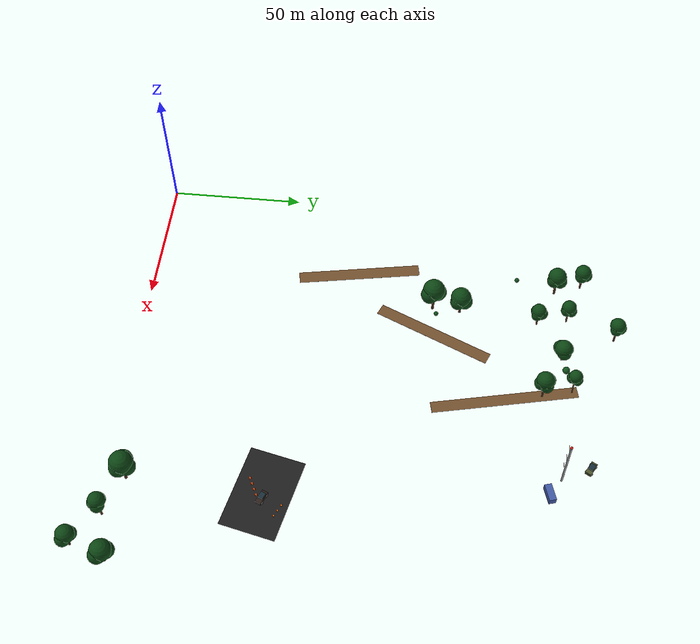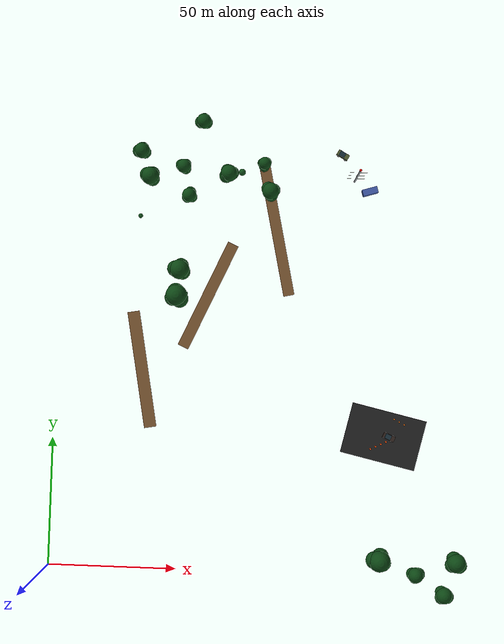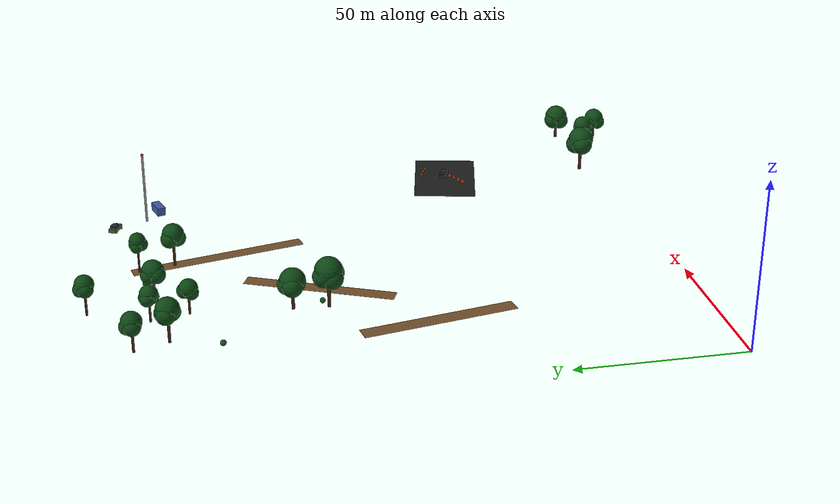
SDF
<sdf version="1.9">
 <world name="forest_monitoring">
  <model name="trail_curve_2">
   <static>true</static>
   <pose>34 78 0.015 0 0 0.18</pose>
   <link name="link">
    <visual name="visual">
     <geometry><box><size>4.8 46 0.03</size></box></geometry>
     <material>
      <ambient>0.36 0.25 0.14 1</ambient>
      <diffuse>0.46 0.32 0.18 1</diffuse>
      <specular>0.1 0.1 0.1 1</specular>
      <pbr><metal><roughness>1.0</roughness><metalness>0.0</metalness></metal></pbr>
     </material>
    </visual>
   </link>
  </model>
  <model name="trail_clearing_link">
   <static>true</static>
   <pose>59 108 0.018 0 0 -0.42</pose>
   <link name="link">
    <visual name="visual">
     <geometry><box><size>4.5 45 0.03</size></box></geometry>
     <material>
      <ambient>0.36 0.25 0.14 1</ambient>
      <diffuse>0.46 0.32 0.18 1</diffuse>
      <specular>0.1 0.1 0.1 1</specular>
      <pbr><metal><roughness>1.0</roughness><metalness>0.0</metalness></metal></pbr>
     </material>
    </visual>
   </link>
  </model>
  <model name="trail_target_link">
   <static>true</static>
   <pose>85 135 0.02 0 0 0.22</pose>
   <link name="link">
    <visual name="visual">
     <geometry><box><size>4.3 53 0.03</size></box></geometry>
     <material>
      <ambient>0.36 0.25 0.14 1</ambient>
      <diffuse>0.46 0.32 0.18 1</diffuse>
      <specular>0.1 0.1 0.1 1</specular>
      <pbr><metal><roughness>1.0</roughness><metalness>0.0</metalness></metal></pbr>
     </material>
    </visual>
   </link>
  </model>
  <model name="monitoring_radio_tower">
   <static>true</static>
   <pose>115 155 0.0 0 0 0</pose>
   <link name="link">
    <collision name="mast_collision">
     <geometry><cylinder><radius>0.35</radius><length>22</length></cylinder></geometry>
    </collision>
    <visual name="mast">
     <pose>0 0 11 0 0 0</pose>
     <geometry><cylinder><radius>0.35</radius><length>22</length></cylinder></geometry>
     <material>
      <ambient>0.45 0.48 0.50 1</ambient>
      <diffuse>0.58 0.60 0.62 1</diffuse>
      <specular>0.1 0.1 0.1 1</specular>
      <pbr><metal><roughness>0.35</roughness><metalness>0.0</metalness></metal></pbr>
     </material>
    </visual>
    <visual name="antenna_bar_0">
     <pose>0 0 6 0 1.5708 0</pose>
     <geometry><cylinder><radius>0.06</radius><length>7</length></cylinder></geometry>
     <material>
      <ambient>0.82 0.82 0.78 1</ambient>
      <diffuse>0.92 0.92 0.86 1</diffuse>
      <specular>0.1 0.1 0.1 1</specular>
      <pbr><metal><roughness>0.4</roughness><metalness>0.0</metalness></metal></pbr>
     </material>
    </visual>
    <visual name="antenna_bar_1">
     <pose>0 0 12 0 1.5708 0</pose>
     <geometry><cylinder><radius>0.06</radius><length>7</length></cylinder></geometry>
     <material>
      <ambient>0.82 0.82 0.78 1</ambient>
      <diffuse>0.92 0.92 0.86 1</diffuse>
      <specular>0.1 0.1 0.1 1</specular>
      <pbr><metal><roughness>0.4</roughness><metalness>0.0</metalness></metal></pbr>
     </material>
    </visual>
    <visual name="antenna_bar_2">
     <pose>0 0 18 0 1.5708 0</pose>
     <geometry><cylinder><radius>0.06</radius><length>7</length></cylinder></geometry>
     <material>
      <ambient>0.82 0.82 0.78 1</ambient>
      <diffuse>0.92 0.92 0.86 1</diffuse>
      <specular>0.1 0.1 0.1 1</specular>
      <pbr><metal><roughness>0.4</roughness><metalness>0.0</metalness></metal></pbr>
     </material>
    </visual>
    <visual name="beacon">
     <pose>0 0 22.6 0 0 0</pose>
     <geometry><sphere><radius>0.45</radius></sphere></geometry>
     <material>
      <ambient>0.9 0.06 0.04 1</ambient>
      <diffuse>1.0 0.08 0.05 1</diffuse>
      <specular>0.1 0.1 0.1 1</specular>
      <pbr><metal><roughness>0.2</roughness><metalness>0.0</metalness></metal></pbr>
     </material>
    </visual>
   </link>
  </model>
  <model name="equipment_container">
   <static>true</static>
   <pose>121 151 1.3 0 0 0.3</pose>
   <link name="link">
    <collision name="collision"><geometry><box><size>6 2.5 2.6</size></box></geometry></collision>
    <visual name="visual">
     <geometry><box><size>6 2.5 2.6</size></box></geometry>
     <material>
      <ambient>0.2 0.3 0.6 1</ambient>
      <diffuse>0.25 0.35 0.65 1</diffuse>
      <specular>0.1 0.1 0.1 1</specular>
      <pbr><metal><roughness>0.4</roughness><metalness>0.0</metalness></metal></pbr>
     </material>
    </visual>
   </link>
  </model>
  <model name="target_pickup">
   <static>true</static>
   <pose>110 165 0.0 0 0 -0.5</pose>
   <link name="link">
    <collision name="body_collision"><geometry><box><size>4.8 2.2 1.2</size></box></geometry></collision>
    <visual name="body">
     <pose>0 0 0.75 0 0 0</pose>
     <geometry><box><size>4.8 2.2 1.2</size></box></geometry>
     <material>
      <ambient>0.30 0.34 0.18 1</ambient>
      <diffuse>0.30 0.34 0.18 1</diffuse>
      <specular>0.1 0.1 0.1 1</specular>
      <pbr><metal><roughness>0.45</roughness><metalness>0.0</metalness></metal></pbr>
     </material>
    </visual>
    <visual name="cabin">
     <pose>-0.35 0 1.55 0 0 0</pose>
     <geometry><box><size>2.3 1.9 0.9</size></box></geometry>
     <material>
      <ambient>0.08 0.12 0.14 1</ambient>
      <diffuse>0.10 0.18 0.22 1</diffuse>
      <specular>0.1 0.1 0.1 1</specular>
      <pbr><metal><roughness>0.25</roughness><metalness>0.0</metalness></metal></pbr>
     </material>
    </visual>
    <visual name="wheel_0_0">
     <pose>-1.55 -1.2 0.35 1.5708 0 0</pose>
     <geometry><cylinder><radius>0.42</radius><length>0.28</length></cylinder></geometry>
     <material>
      <ambient>0.02 0.02 0.02 1</ambient>
      <diffuse>0.03 0.03 0.03 1</diffuse>
      <specular>0.1 0.1 0.1 1</specular>
      <pbr><metal><roughness>0.7</roughness><metalness>0.0</metalness></metal></pbr>
     </material>
    </visual>
    <visual name="wheel_0_1">
     <pose>-1.55 1.2 0.35 1.5708 0 0</pose>
     <geometry><cylinder><radius>0.42</radius><length>0.28</length></cylinder></geometry>
     <material>
      <ambient>0.02 0.02 0.02 1</ambient>
      <diffuse>0.03 0.03 0.03 1</diffuse>
      <specular>0.1 0.1 0.1 1</specular>
      <pbr><metal><roughness>0.7</roughness><metalness>0.0</metalness></metal></pbr>
     </material>
    </visual>
    <visual name="wheel_1_0">
     <pose>1.55 -1.2 0.35 1.5708 0 0</pose>
     <geometry><cylinder><radius>0.42</radius><length>0.28</length></cylinder></geometry>
     <material>
      <ambient>0.02 0.02 0.02 1</ambient>
      <diffuse>0.03 0.03 0.03 1</diffuse>
      <specular>0.1 0.1 0.1 1</specular>
      <pbr><metal><roughness>0.7</roughness><metalness>0.0</metalness></metal></pbr>
     </material>
    </visual>
    <visual name="wheel_1_1">
     <pose>1.55 1.2 0.35 1.5708 0 0</pose>
     <geometry><cylinder><radius>0.42</radius><length>0.28</length></cylinder></geometry>
     <material>
      <ambient>0.02 0.02 0.02 1</ambient>
      <diffuse>0.03 0.03 0.03 1</diffuse>
      <specular>0.1 0.1 0.1 1</specular>
      <pbr><metal><roughness>0.7</roughness><metalness>0.0</metalness></metal></pbr>
     </material>
    </visual>
   </link>
  </model>
  <model name="burnt_ground_patch">
   <static>true</static>
   <pose>130 55 0.01 0 0 -0.22</pose>
   <link name="link">
    <visual name="visual">
     <geometry><box><size>30 20 0.02</size></box></geometry>
     <material>
      <ambient>0.1 0.1 0.1 1</ambient>
      <diffuse>0.12 0.12 0.12 1</diffuse>
      <specular>0.1 0.1 0.1 1</specular>
      <pbr><metal><roughness>1.0</roughness><metalness>0.0</metalness></metal></pbr>
     </material>
    </visual>
   </link>
  </model>
  <model name="damaged_vehicle">
   <static>true</static>
   <pose>132 55 0.05 0 0 -0.4</pose>
   <link name="link">
    <collision name="body_collision"><geometry><box><size>4.8 2.2 1.2</size></box></geometry></collision>
    <visual name="body">
     <pose>0 0 0.75 0 0 0</pose>
     <geometry><box><size>4.8 2.2 1.2</size></box></geometry>
     <material>
      <ambient>0.18 0.13 0.11 1</ambient>
      <diffuse>0.18 0.13 0.11 1</diffuse>
      <specular>0.1 0.1 0.1 1</specular>
      <pbr><metal><roughness>0.45</roughness><metalness>0.0</metalness></metal></pbr>
     </material>
    </visual>
    <visual name="cabin">
     <pose>-0.35 0 1.55 0 0 0</pose>
     <geometry><box><size>2.3 1.9 0.9</size></box></geometry>
     <material>
      <ambient>0.08 0.12 0.14 1</ambient>
      <diffuse>0.10 0.18 0.22 1</diffuse>
      <specular>0.1 0.1 0.1 1</specular>
      <pbr><metal><roughness>0.25</roughness><metalness>0.0</metalness></metal></pbr>
     </material>
    </visual>
    <visual name="wheel_0_0">
     <pose>-1.55 -1.2 0.35 1.5708 0 0</pose>
     <geometry><cylinder><radius>0.42</radius><length>0.28</length></cylinder></geometry>
     <material>
      <ambient>0.02 0.02 0.02 1</ambient>
      <diffuse>0.03 0.03 0.03 1</diffuse>
      <specular>0.1 0.1 0.1 1</specular>
      <pbr><metal><roughness>0.7</roughness><metalness>0.0</metalness></metal></pbr>
     </material>
    </visual>
    <visual name="wheel_0_1">
     <pose>-1.55 1.2 0.35 1.5708 0 0</pose>
     <geometry><cylinder><radius>0.42</radius><length>0.28</length></cylinder></geometry>
     <material>
      <ambient>0.02 0.02 0.02 1</ambient>
      <diffuse>0.03 0.03 0.03 1</diffuse>
      <specular>0.1 0.1 0.1 1</specular>
      <pbr><metal><roughness>0.7</roughness><metalness>0.0</metalness></metal></pbr>
     </material>
    </visual>
    <visual name="wheel_1_0">
     <pose>1.55 -1.2 0.35 1.5708 0 0</pose>
     <geometry><cylinder><radius>0.42</radius><length>0.28</length></cylinder></geometry>
     <material>
      <ambient>0.02 0.02 0.02 1</ambient>
      <diffuse>0.03 0.03 0.03 1</diffuse>
      <specular>0.1 0.1 0.1 1</specular>
      <pbr><metal><roughness>0.7</roughness><metalness>0.0</metalness></metal></pbr>
     </material>
    </visual>
    <visual name="wheel_1_1">
     <pose>1.55 1.2 0.35 1.5708 0 0</pose>
     <geometry><cylinder><radius>0.42</radius><length>0.28</length></cylinder></geometry>
     <material>
      <ambient>0.02 0.02 0.02 1</ambient>
      <diffuse>0.03 0.03 0.03 1</diffuse>
      <specular>0.1 0.1 0.1 1</specular>
      <pbr><metal><roughness>0.7</roughness><metalness>0.0</metalness></metal></pbr>
     </material>
    </visual>
   </link>
  </model>
  <model name="hazard_barrel_0">
   <static>true</static>
   <pose>125 50 0.45 0 0 0</pose>
   <link name="link">
    <collision name="collision">
     <geometry><cylinder><radius>0.350</radius><length>0.900</length></cylinder></geometry>
    </collision>
    <visual name="visual">
     <geometry><cylinder><radius>0.350</radius><length>0.900</length></cylinder></geometry>
     <material>
      <ambient>0.9 0.22 0.04 1</ambient>
      <diffuse>1.0 0.32 0.06 1</diffuse>
      <specular>0.1 0.1 0.1 1</specular>
      <pbr><metal><roughness>0.8</roughness><metalness>0.0</metalness></metal></pbr>
     </material>
    </visual>
   </link>
  </model>
  <model name="hazard_barrel_1">
   <static>true</static>
   <pose>127 51 0.45 0 0 0</pose>
   <link name="link">
    <collision name="collision">
     <geometry><cylinder><radius>0.350</radius><length>0.900</length></cylinder></geometry>
    </collision>
    <visual name="visual">
     <geometry><cylinder><radius>0.350</radius><length>0.900</length></cylinder></geometry>
     <material>
      <ambient>0.9 0.22 0.04 1</ambient>
      <diffuse>1.0 0.32 0.06 1</diffuse>
      <specular>0.1 0.1 0.1 1</specular>
      <pbr><metal><roughness>0.8</roughness><metalness>0.0</metalness></metal></pbr>
     </material>
    </visual>
   </link>
  </model>
  <model name="hazard_barrel_2">
   <static>true</static>
   <pose>129 52 0.45 0 0 0</pose>
   <link name="link">
    <collision name="collision">
     <geometry><cylinder><radius>0.350</radius><length>0.900</length></cylinder></geometry>
    </collision>
    <visual name="visual">
     <geometry><cylinder><radius>0.350</radius><length>0.900</length></cylinder></geometry>
     <material>
      <ambient>0.9 0.22 0.04 1</ambient>
      <diffuse>1.0 0.32 0.06 1</diffuse>
      <specular>0.1 0.1 0.1 1</specular>
      <pbr><metal><roughness>0.8</roughness><metalness>0.0</metalness></metal></pbr>
     </material>
    </visual>
   </link>
  </model>
  <model name="hazard_barrel_3">
   <static>true</static>
   <pose>131 53 0.45 0 0 0</pose>
   <link name="link">
    <collision name="collision">
     <geometry><cylinder><radius>0.350</radius><length>0.900</length></cylinder></geometry>
    </collision>
    <visual name="visual">
     <geometry><cylinder><radius>0.350</radius><length>0.900</length></cylinder></geometry>
     <material>
      <ambient>0.9 0.22 0.04 1</ambient>
      <diffuse>1.0 0.32 0.06 1</diffuse>
      <specular>0.1 0.1 0.1 1</specular>
      <pbr><metal><roughness>0.8</roughness><metalness>0.0</metalness></metal></pbr>
     </material>
    </visual>
   </link>
  </model>
  <model name="hazard_cone_0">
   <static>true</static>
   <pose>138 60 0.325 0 0 0</pose>
   <link name="link">
    <collision name="collision">
     <geometry><cylinder><radius>0.280</radius><length>0.650</length></cylinder></geometry>
    </collision>
    <visual name="visual">
     <geometry><cylinder><radius>0.280</radius><length>0.650</length></cylinder></geometry>
     <material>
      <ambient>0.95 0.32 0.03 1</ambient>
      <diffuse>1.0 0.45 0.06 1</diffuse>
      <specular>0.1 0.1 0.1 1</specular>
      <pbr><metal><roughness>0.8</roughness><metalness>0.0</metalness></metal></pbr>
     </material>
    </visual>
   </link>
  </model>
  <model name="hazard_cone_1">
   <static>true</static>
   <pose>136 61 0.325 0 0 0</pose>
   <link name="link">
    <collision name="collision">
     <geometry><cylinder><radius>0.280</radius><length>0.650</length></cylinder></geometry>
    </collision>
    <visual name="visual">
     <geometry><cylinder><radius>0.280</radius><length>0.650</length></cylinder></geometry>
     <material>
      <ambient>0.95 0.32 0.03 1</ambient>
      <diffuse>1.0 0.45 0.06 1</diffuse>
      <specular>0.1 0.1 0.1 1</specular>
      <pbr><metal><roughness>0.8</roughness><metalness>0.0</metalness></metal></pbr>
     </material>
    </visual>
   </link>
  </model>
  <model name="hazard_cone_2">
   <static>true</static>
   <pose>134 62 0.325 0 0 0</pose>
   <link name="link">
    <collision name="collision">
     <geometry><cylinder><radius>0.280</radius><length>0.650</length></cylinder></geometry>
    </collision>
    <visual name="visual">
     <geometry><cylinder><radius>0.280</radius><length>0.650</length></cylinder></geometry>
     <material>
      <ambient>0.95 0.32 0.03 1</ambient>
      <diffuse>1.0 0.45 0.06 1</diffuse>
      <specular>0.1 0.1 0.1 1</specular>
      <pbr><metal><roughness>0.8</roughness><metalness>0.0</metalness></metal></pbr>
     </material>
    </visual>
   </link>
  </model>
  <model name="tree_24">
   <static>true</static>
   <pose>65.72 155.14 0 0 0 3.59</pose>
   <link name="link">
    <visual name="trunk">
     <pose>0 0 3.94 0 0 0</pose>
     <geometry><cylinder><radius>0.39</radius><length>7.88</length></cylinder></geometry>
     <material>
      <ambient>0.18 0.11 0.06 1</ambient>
      <diffuse>0.24 0.15 0.08 1</diffuse>
      <specular>0.1 0.1 0.1 1</specular>
      <pbr><metal><roughness>0.9</roughness><metalness>0.0</metalness></metal></pbr>
     </material>
    </visual>
    <visual name="canopy_0">
     <pose>0.00 0.00 6.93 0 0 0</pose>
     <geometry><sphere><radius>3.28</radius></sphere></geometry>
     <material>
      <ambient>0.03 0.16 0.05 1</ambient>
      <diffuse>0.05 0.28 0.08 1</diffuse>
      <specular>0.1 0.1 0.1 1</specular>
      <pbr><metal><roughness>1.0</roughness><metalness>0.0</metalness></metal></pbr>
     </material>
    </visual>
    <visual name="canopy_1">
     <pose>1.38 0.39 6.14 0 0 0</pose>
     <geometry><sphere><radius>2.69</radius></sphere></geometry>
     <material>
      <ambient>0.03 0.16 0.05 1</ambient>
      <diffuse>0.05 0.28 0.08 1</diffuse>
      <specular>0.1 0.1 0.1 1</specular>
      <pbr><metal><roughness>1.0</roughness><metalness>0.0</metalness></metal></pbr>
     </material>
    </visual>
    <visual name="canopy_2">
     <pose>-1.25 0.26 5.99 0 0 0</pose>
     <geometry><sphere><radius>2.56</radius></sphere></geometry>
     <material>
      <ambient>0.03 0.16 0.05 1</ambient>
      <diffuse>0.05 0.28 0.08 1</diffuse>
      <specular>0.1 0.1 0.1 1</specular>
      <pbr><metal><roughness>1.0</roughness><metalness>0.0</metalness></metal></pbr>
     </material>
    </visual>
    <visual name="canopy_3">
     <pose>0.13 -1.38 5.83 0 0 0</pose>
     <geometry><sphere><radius>2.49</radius></sphere></geometry>
     <material>
      <ambient>0.03 0.16 0.05 1</ambient>
      <diffuse>0.05 0.28 0.08 1</diffuse>
      <specular>0.1 0.1 0.1 1</specular>
      <pbr><metal><roughness>1.0</roughness><metalness>0.0</metalness></metal></pbr>
     </material>
    </visual>
   </link>
  </model>
  <model name="tree_25">
   <static>true</static>
   <pose>48.02 117.17 0 0 0 2.69</pose>
   <link name="link">
    <visual name="trunk">
     <pose>0 0 5.05 0 0 0</pose>
     <geometry><cylinder><radius>0.46</radius><length>10.09</length></cylinder></geometry>
     <material>
      <ambient>0.18 0.11 0.06 1</ambient>
      <diffuse>0.24 0.15 0.08 1</diffuse>
      <specular>0.1 0.1 0.1 1</specular>
      <pbr><metal><roughness>0.9</roughness><metalness>0.0</metalness></metal></pbr>
     </material>
    </visual>
    <visual name="canopy_0">
     <pose>0.00 0.00 8.88 0 0 0</pose>
     <geometry><sphere><radius>3.80</radius></sphere></geometry>
     <material>
      <ambient>0.03 0.16 0.05 1</ambient>
      <diffuse>0.05 0.28 0.08 1</diffuse>
      <specular>0.1 0.1 0.1 1</specular>
      <pbr><metal><roughness>1.0</roughness><metalness>0.0</metalness></metal></pbr>
     </material>
    </visual>
    <visual name="canopy_1">
     <pose>1.60 0.46 7.87 0 0 0</pose>
     <geometry><sphere><radius>3.12</radius></sphere></geometry>
     <material>
      <ambient>0.03 0.16 0.05 1</ambient>
      <diffuse>0.05 0.28 0.08 1</diffuse>
      <specular>0.1 0.1 0.1 1</specular>
      <pbr><metal><roughness>1.0</roughness><metalness>0.0</metalness></metal></pbr>
     </material>
    </visual>
    <visual name="canopy_2">
     <pose>-1.45 0.30 7.67 0 0 0</pose>
     <geometry><sphere><radius>2.97</radius></sphere></geometry>
     <material>
      <ambient>0.03 0.16 0.05 1</ambient>
      <diffuse>0.05 0.28 0.08 1</diffuse>
      <specular>0.1 0.1 0.1 1</specular>
      <pbr><metal><roughness>1.0</roughness><metalness>0.0</metalness></metal></pbr>
     </material>
    </visual>
    <visual name="canopy_3">
     <pose>0.15 -1.60 7.47 0 0 0</pose>
     <geometry><sphere><radius>2.89</radius></sphere></geometry>
     <material>
      <ambient>0.03 0.16 0.05 1</ambient>
      <diffuse>0.05 0.28 0.08 1</diffuse>
      <specular>0.1 0.1 0.1 1</specular>
      <pbr><metal><roughness>1.0</roughness><metalness>0.0</metalness></metal></pbr>
     </material>
    </visual>
   </link>
  </model>
  <model name="tree_26">
   <static>true</static>
   <pose>50.69 145.98 0 0 0 0.97</pose>
   <link name="link">
    <visual name="trunk">
     <pose>0 0 4.63 0 0 0</pose>
     <geometry><cylinder><radius>0.33</radius><length>9.26</length></cylinder></geometry>
     <material>
      <ambient>0.18 0.11 0.06 1</ambient>
      <diffuse>0.24 0.15 0.08 1</diffuse>
      <specular>0.1 0.1 0.1 1</specular>
      <pbr><metal><roughness>0.9</roughness><metalness>0.0</metalness></metal></pbr>
     </material>
    </visual>
    <visual name="canopy_0">
     <pose>0.00 0.00 8.15 0 0 0</pose>
     <geometry><sphere><radius>2.72</radius></sphere></geometry>
     <material>
      <ambient>0.03 0.16 0.05 1</ambient>
      <diffuse>0.05 0.28 0.08 1</diffuse>
      <specular>0.1 0.1 0.1 1</specular>
      <pbr><metal><roughness>1.0</roughness><metalness>0.0</metalness></metal></pbr>
     </material>
    </visual>
    <visual name="canopy_1">
     <pose>1.14 0.33 7.22 0 0 0</pose>
     <geometry><sphere><radius>2.23</radius></sphere></geometry>
     <material>
      <ambient>0.03 0.16 0.05 1</ambient>
      <diffuse>0.05 0.28 0.08 1</diffuse>
      <specular>0.1 0.1 0.1 1</specular>
      <pbr><metal><roughness>1.0</roughness><metalness>0.0</metalness></metal></pbr>
     </material>
    </visual>
    <visual name="canopy_2">
     <pose>-1.03 0.22 7.04 0 0 0</pose>
     <geometry><sphere><radius>2.12</radius></sphere></geometry>
     <material>
      <ambient>0.03 0.16 0.05 1</ambient>
      <diffuse>0.05 0.28 0.08 1</diffuse>
      <specular>0.1 0.1 0.1 1</specular>
      <pbr><metal><roughness>1.0</roughness><metalness>0.0</metalness></metal></pbr>
     </material>
    </visual>
    <visual name="canopy_3">
     <pose>0.11 -1.14 6.85 0 0 0</pose>
     <geometry><sphere><radius>2.07</radius></sphere></geometry>
     <material>
      <ambient>0.03 0.16 0.05 1</ambient>
      <diffuse>0.05 0.28 0.08 1</diffuse>
      <specular>0.1 0.1 0.1 1</specular>
      <pbr><metal><roughness>1.0</roughness><metalness>0.0</metalness></metal></pbr>
     </material>
    </visual>
   </link>
  </model>
  <model name="tree_28">
   <static>true</static>
   <pose>82.03 148.21 0 0 0 1.98</pose>
   <link name="link">
    <visual name="trunk">
     <pose>0 0 5.82 0 0 0</pose>
     <geometry><cylinder><radius>0.39</radius><length>11.64</length></cylinder></geometry>
     <material>
      <ambient>0.18 0.11 0.06 1</ambient>
      <diffuse>0.24 0.15 0.08 1</diffuse>
      <specular>0.1 0.1 0.1 1</specular>
      <pbr><metal><roughness>0.9</roughness><metalness>0.0</metalness></metal></pbr>
     </material>
    </visual>
    <visual name="canopy_0">
     <pose>0.00 0.00 10.25 0 0 0</pose>
     <geometry><sphere><radius>3.27</radius></sphere></geometry>
     <material>
      <ambient>0.03 0.16 0.05 1</ambient>
      <diffuse>0.05 0.28 0.08 1</diffuse>
      <specular>0.1 0.1 0.1 1</specular>
      <pbr><metal><roughness>1.0</roughness><metalness>0.0</metalness></metal></pbr>
     </material>
    </visual>
    <visual name="canopy_1">
     <pose>1.37 0.39 9.08 0 0 0</pose>
     <geometry><sphere><radius>2.68</radius></sphere></geometry>
     <material>
      <ambient>0.03 0.16 0.05 1</ambient>
      <diffuse>0.05 0.28 0.08 1</diffuse>
      <specular>0.1 0.1 0.1 1</specular>
      <pbr><metal><roughness>1.0</roughness><metalness>0.0</metalness></metal></pbr>
     </material>
    </visual>
    <visual name="canopy_2">
     <pose>-1.24 0.26 8.85 0 0 0</pose>
     <geometry><sphere><radius>2.55</radius></sphere></geometry>
     <material>
      <ambient>0.03 0.16 0.05 1</ambient>
      <diffuse>0.05 0.28 0.08 1</diffuse>
      <specular>0.1 0.1 0.1 1</specular>
      <pbr><metal><roughness>1.0</roughness><metalness>0.0</metalness></metal></pbr>
     </material>
    </visual>
    <visual name="canopy_3">
     <pose>0.13 -1.37 8.62 0 0 0</pose>
     <geometry><sphere><radius>2.49</radius></sphere></geometry>
     <material>
      <ambient>0.03 0.16 0.05 1</ambient>
      <diffuse>0.05 0.28 0.08 1</diffuse>
      <specular>0.1 0.1 0.1 1</specular>
      <pbr><metal><roughness>1.0</roughness><metalness>0.0</metalness></metal></pbr>
     </material>
    </visual>
   </link>
  </model>
  <model name="tree_29">
   <static>true</static>
   <pose>79.41 158.73 0 0 0 4.24</pose>
   <link name="link">
    <visual name="trunk">
     <pose>0 0 5.87 0 0 0</pose>
     <geometry><cylinder><radius>0.29</radius><length>11.74</length></cylinder></geometry>
     <material>
      <ambient>0.18 0.11 0.06 1</ambient>
      <diffuse>0.24 0.15 0.08 1</diffuse>
      <specular>0.1 0.1 0.1 1</specular>
      <pbr><metal><roughness>0.9</roughness><metalness>0.0</metalness></metal></pbr>
     </material>
    </visual>
    <visual name="canopy_0">
     <pose>0.00 0.00 10.33 0 0 0</pose>
     <geometry><sphere><radius>2.44</radius></sphere></geometry>
     <material>
      <ambient>0.03 0.16 0.05 1</ambient>
      <diffuse>0.05 0.28 0.08 1</diffuse>
      <specular>0.1 0.1 0.1 1</specular>
      <pbr><metal><roughness>1.0</roughness><metalness>0.0</metalness></metal></pbr>
     </material>
    </visual>
    <visual name="canopy_1">
     <pose>1.02 0.29 9.16 0 0 0</pose>
     <geometry><sphere><radius>2.00</radius></sphere></geometry>
     <material>
      <ambient>0.03 0.16 0.05 1</ambient>
      <diffuse>0.05 0.28 0.08 1</diffuse>
      <specular>0.1 0.1 0.1 1</specular>
      <pbr><metal><roughness>1.0</roughness><metalness>0.0</metalness></metal></pbr>
     </material>
    </visual>
    <visual name="canopy_2">
     <pose>-0.93 0.20 8.92 0 0 0</pose>
     <geometry><sphere><radius>1.90</radius></sphere></geometry>
     <material>
      <ambient>0.03 0.16 0.05 1</ambient>
      <diffuse>0.05 0.28 0.08 1</diffuse>
      <specular>0.1 0.1 0.1 1</specular>
      <pbr><metal><roughness>1.0</roughness><metalness>0.0</metalness></metal></pbr>
     </material>
    </visual>
    <visual name="canopy_3">
     <pose>0.10 -1.02 8.69 0 0 0</pose>
     <geometry><sphere><radius>1.85</radius></sphere></geometry>
     <material>
      <ambient>0.03 0.16 0.05 1</ambient>
      <diffuse>0.05 0.28 0.08 1</diffuse>
      <specular>0.1 0.1 0.1 1</specular>
      <pbr><metal><roughness>1.0</roughness><metalness>0.0</metalness></metal></pbr>
     </material>
    </visual>
   </link>
  </model>
  <model name="tree_31">
   <static>true</static>
   <pose>32.08 162.25 0 0 0 2.91</pose>
   <link name="link">
    <visual name="trunk">
     <pose>0 0 5.27 0 0 0</pose>
     <geometry><cylinder><radius>0.36</radius><length>10.54</length></cylinder></geometry>
     <material>
      <ambient>0.18 0.11 0.06 1</ambient>
      <diffuse>0.24 0.15 0.08 1</diffuse>
      <specular>0.1 0.1 0.1 1</specular>
      <pbr><metal><roughness>0.9</roughness><metalness>0.0</metalness></metal></pbr>
     </material>
    </visual>
    <visual name="canopy_0">
     <pose>0.00 0.00 9.28 0 0 0</pose>
     <geometry><sphere><radius>2.97</radius></sphere></geometry>
     <material>
      <ambient>0.03 0.16 0.05 1</ambient>
      <diffuse>0.05 0.28 0.08 1</diffuse>
      <specular>0.1 0.1 0.1 1</specular>
      <pbr><metal><roughness>1.0</roughness><metalness>0.0</metalness></metal></pbr>
     </material>
    </visual>
    <visual name="canopy_1">
     <pose>1.25 0.36 8.22 0 0 0</pose>
     <geometry><sphere><radius>2.44</radius></sphere></geometry>
     <material>
      <ambient>0.03 0.16 0.05 1</ambient>
      <diffuse>0.05 0.28 0.08 1</diffuse>
      <specular>0.1 0.1 0.1 1</specular>
      <pbr><metal><roughness>1.0</roughness><metalness>0.0</metalness></metal></pbr>
     </material>
    </visual>
    <visual name="canopy_2">
     <pose>-1.13 0.24 8.01 0 0 0</pose>
     <geometry><sphere><radius>2.32</radius></sphere></geometry>
     <material>
      <ambient>0.03 0.16 0.05 1</ambient>
      <diffuse>0.05 0.28 0.08 1</diffuse>
      <specular>0.1 0.1 0.1 1</specular>
      <pbr><metal><roughness>1.0</roughness><metalness>0.0</metalness></metal></pbr>
     </material>
    </visual>
    <visual name="canopy_3">
     <pose>0.12 -1.25 7.80 0 0 0</pose>
     <geometry><sphere><radius>2.26</radius></sphere></geometry>
     <material>
      <ambient>0.03 0.16 0.05 1</ambient>
      <diffuse>0.05 0.28 0.08 1</diffuse>
      <specular>0.1 0.1 0.1 1</specular>
      <pbr><metal><roughness>1.0</roughness><metalness>0.0</metalness></metal></pbr>
     </material>
    </visual>
   </link>
  </model>
  <model name="tree_32">
   <static>true</static>
   <pose>35.69 152.47 0 0 0 2.46</pose>
   <link name="link">
    <visual name="trunk">
     <pose>0 0 5.78 0 0 0</pose>
     <geometry><cylinder><radius>0.41</radius><length>11.56</length></cylinder></geometry>
     <material>
      <ambient>0.18 0.11 0.06 1</ambient>
      <diffuse>0.24 0.15 0.08 1</diffuse>
      <specular>0.1 0.1 0.1 1</specular>
      <pbr><metal><roughness>0.9</roughness><metalness>0.0</metalness></metal></pbr>
     </material>
    </visual>
    <visual name="canopy_0">
     <pose>0.00 0.00 10.18 0 0 0</pose>
     <geometry><sphere><radius>3.40</radius></sphere></geometry>
     <material>
      <ambient>0.03 0.16 0.05 1</ambient>
      <diffuse>0.05 0.28 0.08 1</diffuse>
      <specular>0.1 0.1 0.1 1</specular>
      <pbr><metal><roughness>1.0</roughness><metalness>0.0</metalness></metal></pbr>
     </material>
    </visual>
    <visual name="canopy_1">
     <pose>1.43 0.41 9.02 0 0 0</pose>
     <geometry><sphere><radius>2.79</radius></sphere></geometry>
     <material>
      <ambient>0.03 0.16 0.05 1</ambient>
      <diffuse>0.05 0.28 0.08 1</diffuse>
      <specular>0.1 0.1 0.1 1</specular>
      <pbr><metal><roughness>1.0</roughness><metalness>0.0</metalness></metal></pbr>
     </material>
    </visual>
    <visual name="canopy_2">
     <pose>-1.29 0.27 8.79 0 0 0</pose>
     <geometry><sphere><radius>2.65</radius></sphere></geometry>
     <material>
      <ambient>0.03 0.16 0.05 1</ambient>
      <diffuse>0.05 0.28 0.08 1</diffuse>
      <specular>0.1 0.1 0.1 1</specular>
      <pbr><metal><roughness>1.0</roughness><metalness>0.0</metalness></metal></pbr>
     </material>
    </visual>
    <visual name="canopy_3">
     <pose>0.14 -1.43 8.56 0 0 0</pose>
     <geometry><sphere><radius>2.59</radius></sphere></geometry>
     <material>
      <ambient>0.03 0.16 0.05 1</ambient>
      <diffuse>0.05 0.28 0.08 1</diffuse>
      <specular>0.1 0.1 0.1 1</specular>
      <pbr><metal><roughness>1.0</roughness><metalness>0.0</metalness></metal></pbr>
     </material>
    </visual>
   </link>
  </model>
  <model name="tree_33">
   <static>true</static>
   <pose>47.42 107.01 0 0 0 5.17</pose>
   <link name="link">
    <visual name="trunk">
     <pose>0 0 6.43 0 0 0</pose>
     <geometry><cylinder><radius>0.49</radius><length>12.87</length></cylinder></geometry>
     <material>
      <ambient>0.18 0.11 0.06 1</ambient>
      <diffuse>0.24 0.15 0.08 1</diffuse>
      <specular>0.1 0.1 0.1 1</specular>
      <pbr><metal><roughness>0.9</roughness><metalness>0.0</metalness></metal></pbr>
     </material>
    </visual>
    <visual name="canopy_0">
     <pose>0.00 0.00 11.32 0 0 0</pose>
     <geometry><sphere><radius>4.11</radius></sphere></geometry>
     <material>
      <ambient>0.03 0.16 0.05 1</ambient>
      <diffuse>0.05 0.28 0.08 1</diffuse>
      <specular>0.1 0.1 0.1 1</specular>
      <pbr><metal><roughness>1.0</roughness><metalness>0.0</metalness></metal></pbr>
     </material>
    </visual>
    <visual name="canopy_1">
     <pose>1.72 0.49 10.03 0 0 0</pose>
     <geometry><sphere><radius>3.37</radius></sphere></geometry>
     <material>
      <ambient>0.03 0.16 0.05 1</ambient>
      <diffuse>0.05 0.28 0.08 1</diffuse>
      <specular>0.1 0.1 0.1 1</specular>
      <pbr><metal><roughness>1.0</roughness><metalness>0.0</metalness></metal></pbr>
     </material>
    </visual>
    <visual name="canopy_2">
     <pose>-1.56 0.33 9.78 0 0 0</pose>
     <geometry><sphere><radius>3.20</radius></sphere></geometry>
     <material>
      <ambient>0.03 0.16 0.05 1</ambient>
      <diffuse>0.05 0.28 0.08 1</diffuse>
      <specular>0.1 0.1 0.1 1</specular>
      <pbr><metal><roughness>1.0</roughness><metalness>0.0</metalness></metal></pbr>
     </material>
    </visual>
    <visual name="canopy_3">
     <pose>0.16 -1.72 9.52 0 0 0</pose>
     <geometry><sphere><radius>3.12</radius></sphere></geometry>
     <material>
      <ambient>0.03 0.16 0.05 1</ambient>
      <diffuse>0.05 0.28 0.08 1</diffuse>
      <specular>0.1 0.1 0.1 1</specular>
      <pbr><metal><roughness>1.0</roughness><metalness>0.0</metalness></metal></pbr>
     </material>
    </visual>
   </link>
  </model>
  <model name="tree_34">
   <static>true</static>
   <pose>48.33 156.98 0 0 0 2.44</pose>
   <link name="link">
    <visual name="trunk">
     <pose>0 0 4.88 0 0 0</pose>
     <geometry><cylinder><radius>0.32</radius><length>9.76</length></cylinder></geometry>
     <material>
      <ambient>0.18 0.11 0.06 1</ambient>
      <diffuse>0.24 0.15 0.08 1</diffuse>
      <specular>0.1 0.1 0.1 1</specular>
      <pbr><metal><roughness>0.9</roughness><metalness>0.0</metalness></metal></pbr>
     </material>
    </visual>
    <visual name="canopy_0">
     <pose>0.00 0.00 8.59 0 0 0</pose>
     <geometry><sphere><radius>2.68</radius></sphere></geometry>
     <material>
      <ambient>0.03 0.16 0.05 1</ambient>
      <diffuse>0.05 0.28 0.08 1</diffuse>
      <specular>0.1 0.1 0.1 1</specular>
      <pbr><metal><roughness>1.0</roughness><metalness>0.0</metalness></metal></pbr>
     </material>
    </visual>
    <visual name="canopy_1">
     <pose>1.13 0.32 7.61 0 0 0</pose>
     <geometry><sphere><radius>2.20</radius></sphere></geometry>
     <material>
      <ambient>0.03 0.16 0.05 1</ambient>
      <diffuse>0.05 0.28 0.08 1</diffuse>
      <specular>0.1 0.1 0.1 1</specular>
      <pbr><metal><roughness>1.0</roughness><metalness>0.0</metalness></metal></pbr>
     </material>
    </visual>
    <visual name="canopy_2">
     <pose>-1.02 0.21 7.42 0 0 0</pose>
     <geometry><sphere><radius>2.09</radius></sphere></geometry>
     <material>
      <ambient>0.03 0.16 0.05 1</ambient>
      <diffuse>0.05 0.28 0.08 1</diffuse>
      <specular>0.1 0.1 0.1 1</specular>
      <pbr><metal><roughness>1.0</roughness><metalness>0.0</metalness></metal></pbr>
     </material>
    </visual>
    <visual name="canopy_3">
     <pose>0.11 -1.13 7.22 0 0 0</pose>
     <geometry><sphere><radius>2.04</radius></sphere></geometry>
     <material>
      <ambient>0.03 0.16 0.05 1</ambient>
      <diffuse>0.05 0.28 0.08 1</diffuse>
      <specular>0.1 0.1 0.1 1</specular>
      <pbr><metal><roughness>1.0</roughness><metalness>0.0</metalness></metal></pbr>
     </material>
    </visual>
   </link>
  </model>
  <model name="tree_35">
   <static>true</static>
   <pose>55.49 174.30 0 0 0 3.04</pose>
   <link name="link">
    <visual name="trunk">
     <pose>0 0 5.50 0 0 0</pose>
     <geometry><cylinder><radius>0.34</radius><length>10.99</length></cylinder></geometry>
     <material>
      <ambient>0.18 0.11 0.06 1</ambient>
      <diffuse>0.24 0.15 0.08 1</diffuse>
      <specular>0.1 0.1 0.1 1</specular>
      <pbr><metal><roughness>0.9</roughness><metalness>0.0</metalness></metal></pbr>
     </material>
    </visual>
    <visual name="canopy_0">
     <pose>0.00 0.00 9.67 0 0 0</pose>
     <geometry><sphere><radius>2.83</radius></sphere></geometry>
     <material>
      <ambient>0.03 0.16 0.05 1</ambient>
      <diffuse>0.05 0.28 0.08 1</diffuse>
      <specular>0.1 0.1 0.1 1</specular>
      <pbr><metal><roughness>1.0</roughness><metalness>0.0</metalness></metal></pbr>
     </material>
    </visual>
    <visual name="canopy_1">
     <pose>1.19 0.34 8.57 0 0 0</pose>
     <geometry><sphere><radius>2.32</radius></sphere></geometry>
     <material>
      <ambient>0.03 0.16 0.05 1</ambient>
      <diffuse>0.05 0.28 0.08 1</diffuse>
      <specular>0.1 0.1 0.1 1</specular>
      <pbr><metal><roughness>1.0</roughness><metalness>0.0</metalness></metal></pbr>
     </material>
    </visual>
    <visual name="canopy_2">
     <pose>-1.08 0.23 8.35 0 0 0</pose>
     <geometry><sphere><radius>2.21</radius></sphere></geometry>
     <material>
      <ambient>0.03 0.16 0.05 1</ambient>
      <diffuse>0.05 0.28 0.08 1</diffuse>
      <specular>0.1 0.1 0.1 1</specular>
      <pbr><metal><roughness>1.0</roughness><metalness>0.0</metalness></metal></pbr>
     </material>
    </visual>
    <visual name="canopy_3">
     <pose>0.11 -1.19 8.13 0 0 0</pose>
     <geometry><sphere><radius>2.15</radius></sphere></geometry>
     <material>
      <ambient>0.03 0.16 0.05 1</ambient>
      <diffuse>0.05 0.28 0.08 1</diffuse>
      <specular>0.1 0.1 0.1 1</specular>
      <pbr><metal><roughness>1.0</roughness><metalness>0.0</metalness></metal></pbr>
     </material>
    </visual>
   </link>
  </model>
  <model name="tree_61">
   <static>true</static>
   <pose>154.54 -4.84 0 0 0 5.59</pose>
   <link name="link">
    <visual name="trunk">
     <pose>0 0 4.45 0 0 0</pose>
     <geometry><cylinder><radius>0.39</radius><length>8.90</length></cylinder></geometry>
     <material>
      <ambient>0.18 0.11 0.06 1</ambient>
      <diffuse>0.24 0.15 0.08 1</diffuse>
      <specular>0.1 0.1 0.1 1</specular>
      <pbr><metal><roughness>0.9</roughness><metalness>0.0</metalness></metal></pbr>
     </material>
    </visual>
    <visual name="canopy_0">
     <pose>0.00 0.00 7.83 0 0 0</pose>
     <geometry><sphere><radius>3.24</radius></sphere></geometry>
     <material>
      <ambient>0.03 0.16 0.05 1</ambient>
      <diffuse>0.05 0.28 0.08 1</diffuse>
      <specular>0.1 0.1 0.1 1</specular>
      <pbr><metal><roughness>1.0</roughness><metalness>0.0</metalness></metal></pbr>
     </material>
    </visual>
    <visual name="canopy_1">
     <pose>1.36 0.39 6.94 0 0 0</pose>
     <geometry><sphere><radius>2.66</radius></sphere></geometry>
     <material>
      <ambient>0.03 0.16 0.05 1</ambient>
      <diffuse>0.05 0.28 0.08 1</diffuse>
      <specular>0.1 0.1 0.1 1</specular>
      <pbr><metal><roughness>1.0</roughness><metalness>0.0</metalness></metal></pbr>
     </material>
    </visual>
    <visual name="canopy_2">
     <pose>-1.23 0.26 6.76 0 0 0</pose>
     <geometry><sphere><radius>2.53</radius></sphere></geometry>
     <material>
      <ambient>0.03 0.16 0.05 1</ambient>
      <diffuse>0.05 0.28 0.08 1</diffuse>
      <specular>0.1 0.1 0.1 1</specular>
      <pbr><metal><roughness>1.0</roughness><metalness>0.0</metalness></metal></pbr>
     </material>
    </visual>
    <visual name="canopy_3">
     <pose>0.13 -1.36 6.58 0 0 0</pose>
     <geometry><sphere><radius>2.46</radius></sphere></geometry>
     <material>
      <ambient>0.03 0.16 0.05 1</ambient>
      <diffuse>0.05 0.28 0.08 1</diffuse>
      <specular>0.1 0.1 0.1 1</specular>
      <pbr><metal><roughness>1.0</roughness><metalness>0.0</metalness></metal></pbr>
     </material>
    </visual>
   </link>
  </model>
  <model name="tree_62">
   <static>true</static>
   <pose>158.77 7.83 0 0 0 5.35</pose>
   <link name="link">
    <visual name="trunk">
     <pose>0 0 4.46 0 0 0</pose>
     <geometry><cylinder><radius>0.45</radius><length>8.93</length></cylinder></geometry>
     <material>
      <ambient>0.18 0.11 0.06 1</ambient>
      <diffuse>0.24 0.15 0.08 1</diffuse>
      <specular>0.1 0.1 0.1 1</specular>
      <pbr><metal><roughness>0.9</roughness><metalness>0.0</metalness></metal></pbr>
     </material>
    </visual>
    <visual name="canopy_0">
     <pose>0.00 0.00 7.86 0 0 0</pose>
     <geometry><sphere><radius>3.77</radius></sphere></geometry>
     <material>
      <ambient>0.03 0.16 0.05 1</ambient>
      <diffuse>0.05 0.28 0.08 1</diffuse>
      <specular>0.1 0.1 0.1 1</specular>
      <pbr><metal><roughness>1.0</roughness><metalness>0.0</metalness></metal></pbr>
     </material>
    </visual>
    <visual name="canopy_1">
     <pose>1.58 0.45 6.96 0 0 0</pose>
     <geometry><sphere><radius>3.09</radius></sphere></geometry>
     <material>
      <ambient>0.03 0.16 0.05 1</ambient>
      <diffuse>0.05 0.28 0.08 1</diffuse>
      <specular>0.1 0.1 0.1 1</specular>
      <pbr><metal><roughness>1.0</roughness><metalness>0.0</metalness></metal></pbr>
     </material>
    </visual>
    <visual name="canopy_2">
     <pose>-1.43 0.30 6.79 0 0 0</pose>
     <geometry><sphere><radius>2.94</radius></sphere></geometry>
     <material>
      <ambient>0.03 0.16 0.05 1</ambient>
      <diffuse>0.05 0.28 0.08 1</diffuse>
      <specular>0.1 0.1 0.1 1</specular>
      <pbr><metal><roughness>1.0</roughness><metalness>0.0</metalness></metal></pbr>
     </material>
    </visual>
    <visual name="canopy_3">
     <pose>0.15 -1.58 6.61 0 0 0</pose>
     <geometry><sphere><radius>2.86</radius></sphere></geometry>
     <material>
      <ambient>0.03 0.16 0.05 1</ambient>
      <diffuse>0.05 0.28 0.08 1</diffuse>
      <specular>0.1 0.1 0.1 1</specular>
      <pbr><metal><roughness>1.0</roughness><metalness>0.0</metalness></metal></pbr>
     </material>
    </visual>
   </link>
  </model>
  <model name="tree_67">
   <static>true</static>
   <pose>142.97 3.09 0 0 0 6.23</pose>
   <link name="link">
    <visual name="trunk">
     <pose>0 0 5.79 0 0 0</pose>
     <geometry><cylinder><radius>0.36</radius><length>11.58</length></cylinder></geometry>
     <material>
      <ambient>0.18 0.11 0.06 1</ambient>
      <diffuse>0.24 0.15 0.08 1</diffuse>
      <specular>0.1 0.1 0.1 1</specular>
      <pbr><metal><roughness>0.9</roughness><metalness>0.0</metalness></metal></pbr>
     </material>
    </visual>
    <visual name="canopy_0">
     <pose>0.00 0.00 10.19 0 0 0</pose>
     <geometry><sphere><radius>2.97</radius></sphere></geometry>
     <material>
      <ambient>0.03 0.16 0.05 1</ambient>
      <diffuse>0.05 0.28 0.08 1</diffuse>
      <specular>0.1 0.1 0.1 1</specular>
      <pbr><metal><roughness>1.0</roughness><metalness>0.0</metalness></metal></pbr>
     </material>
    </visual>
    <visual name="canopy_1">
     <pose>1.25 0.36 9.03 0 0 0</pose>
     <geometry><sphere><radius>2.43</radius></sphere></geometry>
     <material>
      <ambient>0.03 0.16 0.05 1</ambient>
      <diffuse>0.05 0.28 0.08 1</diffuse>
      <specular>0.1 0.1 0.1 1</specular>
      <pbr><metal><roughness>1.0</roughness><metalness>0.0</metalness></metal></pbr>
     </material>
    </visual>
    <visual name="canopy_2">
     <pose>-1.13 0.24 8.80 0 0 0</pose>
     <geometry><sphere><radius>2.32</radius></sphere></geometry>
     <material>
      <ambient>0.03 0.16 0.05 1</ambient>
      <diffuse>0.05 0.28 0.08 1</diffuse>
      <specular>0.1 0.1 0.1 1</specular>
      <pbr><metal><roughness>1.0</roughness><metalness>0.0</metalness></metal></pbr>
     </material>
    </visual>
    <visual name="canopy_3">
     <pose>0.12 -1.25 8.57 0 0 0</pose>
     <geometry><sphere><radius>2.26</radius></sphere></geometry>
     <material>
      <ambient>0.03 0.16 0.05 1</ambient>
      <diffuse>0.05 0.28 0.08 1</diffuse>
      <specular>0.1 0.1 0.1 1</specular>
      <pbr><metal><roughness>1.0</roughness><metalness>0.0</metalness></metal></pbr>
     </material>
    </visual>
   </link>
  </model>
  <model name="tree_71">
   <static>true</static>
   <pose>128.87 8.08 0 0 0 2.80</pose>
   <link name="link">
    <visual name="trunk">
     <pose>0 0 6.17 0 0 0</pose>
     <geometry><cylinder><radius>0.50</radius><length>12.33</length></cylinder></geometry>
     <material>
      <ambient>0.18 0.11 0.06 1</ambient>
      <diffuse>0.24 0.15 0.08 1</diffuse>
      <specular>0.1 0.1 0.1 1</specular>
      <pbr><metal><roughness>0.9</roughness><metalness>0.0</metalness></metal></pbr>
     </material>
    </visual>
    <visual name="canopy_0">
     <pose>0.00 0.00 10.85 0 0 0</pose>
     <geometry><sphere><radius>4.14</radius></sphere></geometry>
     <material>
      <ambient>0.03 0.16 0.05 1</ambient>
      <diffuse>0.05 0.28 0.08 1</diffuse>
      <specular>0.1 0.1 0.1 1</specular>
      <pbr><metal><roughness>1.0</roughness><metalness>0.0</metalness></metal></pbr>
     </material>
    </visual>
    <visual name="canopy_1">
     <pose>1.74 0.50 9.62 0 0 0</pose>
     <geometry><sphere><radius>3.40</radius></sphere></geometry>
     <material>
      <ambient>0.03 0.16 0.05 1</ambient>
      <diffuse>0.05 0.28 0.08 1</diffuse>
      <specular>0.1 0.1 0.1 1</specular>
      <pbr><metal><roughness>1.0</roughness><metalness>0.0</metalness></metal></pbr>
     </material>
    </visual>
    <visual name="canopy_2">
     <pose>-1.57 0.33 9.37 0 0 0</pose>
     <geometry><sphere><radius>3.23</radius></sphere></geometry>
     <material>
      <ambient>0.03 0.16 0.05 1</ambient>
      <diffuse>0.05 0.28 0.08 1</diffuse>
      <specular>0.1 0.1 0.1 1</specular>
      <pbr><metal><roughness>1.0</roughness><metalness>0.0</metalness></metal></pbr>
     </material>
    </visual>
    <visual name="canopy_3">
     <pose>0.17 -1.74 9.12 0 0 0</pose>
     <geometry><sphere><radius>3.15</radius></sphere></geometry>
     <material>
      <ambient>0.03 0.16 0.05 1</ambient>
      <diffuse>0.05 0.28 0.08 1</diffuse>
      <specular>0.1 0.1 0.1 1</specular>
      <pbr><metal><roughness>1.0</roughness><metalness>0.0</metalness></metal></pbr>
     </material>
    </visual>
   </link>
  </model>
  <model name="bush_8">
   <static>true</static>
   <pose>70.70 156.88 0.65 0 0 0</pose>
   <link name="link">
    <visual name="visual">
     <geometry><sphere><radius>1.328</radius></sphere></geometry>
     <material>
      <ambient>0.04 0.20 0.07 1</ambient>
      <diffuse>0.07 0.32 0.11 1</diffuse>
      <specular>0.1 0.1 0.1 1</specular>
      <pbr><metal><roughness>0.8</roughness><metalness>0.0</metalness></metal></pbr>
     </material>
    </visual>
   </link>
  </model>
  <model name="bush_9">
   <static>true</static>
   <pose>31.41 138.35 0.65 0 0 0</pose>
   <link name="link">
    <visual name="visual">
     <geometry><sphere><radius>0.878</radius></sphere></geometry>
     <material>
      <ambient>0.04 0.20 0.07 1</ambient>
      <diffuse>0.07 0.32 0.11 1</diffuse>
      <specular>0.1 0.1 0.1 1</specular>
      <pbr><metal><roughness>0.8</roughness><metalness>0.0</metalness></metal></pbr>
     </material>
    </visual>
   </link>
  </model>
  <model name="bush_11">
   <static>true</static>
   <pose>50.18 108.49 0.65 0 0 0</pose>
   <link name="link">
    <visual name="visual">
     <geometry><sphere><radius>0.821</radius></sphere></geometry>
     <material>
      <ambient>0.04 0.20 0.07 1</ambient>
      <diffuse>0.07 0.32 0.11 1</diffuse>
      <specular>0.1 0.1 0.1 1</specular>
      <pbr><metal><roughness>0.8</roughness><metalness>0.0</metalness></metal></pbr>
     </material>
    </visual>
   </link>
  </model>
 </world>
</sdf>
